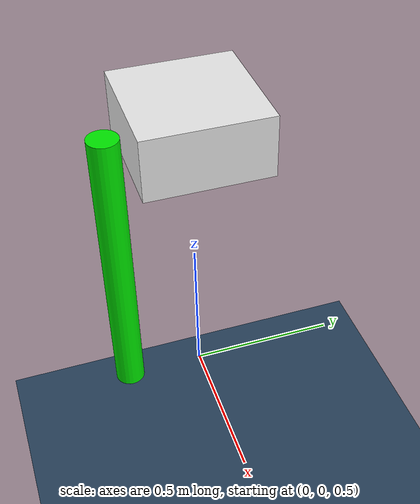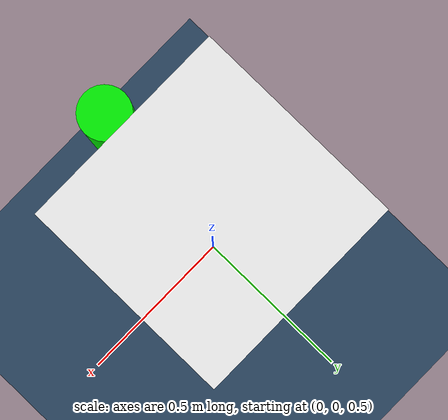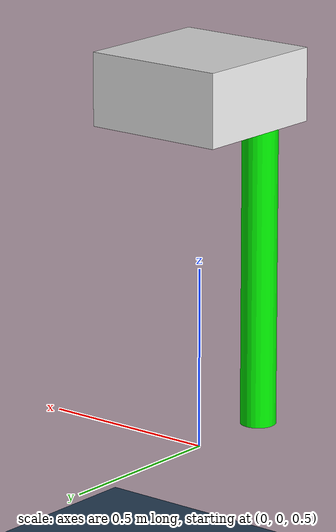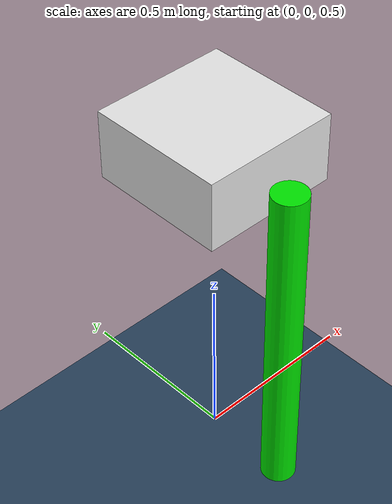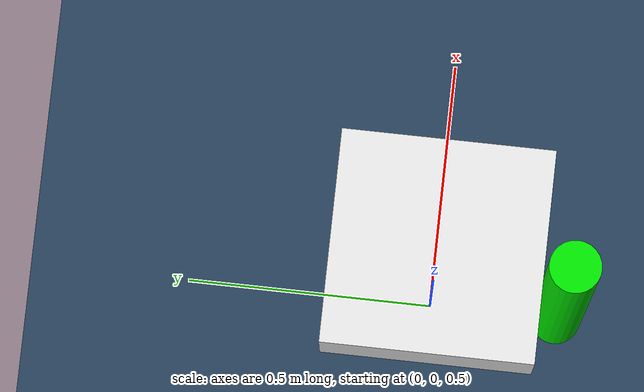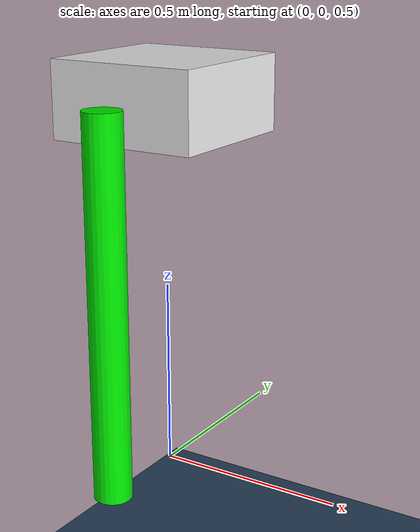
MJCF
<mujoco model="CartPole scene">

  <include file="mjCrtPl.xml"/>

  <statistic center="0.3 0 0.4" extent="1"/>

  <visual>
    <headlight diffuse="0.6 0.6 0.6" ambient="0.3 0.3 0.3" specular="0 0 0"/>
    <rgba haze="0.15 0.25 0.35 1"/>
    <global azimuth="120" elevation="-20"/>
  </visual>

  <asset>
    <texture type="skybox" builtin="gradient" rgb1="0.3 0.5 0.7" rgb2="0 0 0" width="512" height="3072"/>
    <texture type="2d" name="groundplane" builtin="checker" mark="edge" rgb1="0.2 0.3 0.4" rgb2="0.1 0.2 0.3"
      markrgb="0.8 0.8 0.8" width="300" height="300"/>
    <material name="groundplane" texture="groundplane" texuniform="true" texrepeat="5 5" reflectance="0.2"/>
  </asset>

  <worldbody>
    <light pos="0 0 1.5" dir="0 0 -1" directional="true"/>
    <geom name="floor" size="0 0 0.05" type="plane" material="groundplane"/>
  </worldbody>

</mujoco>

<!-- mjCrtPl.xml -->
<mujoco model="Cart on a Pole">
	<compiler angle="radian" autolimits="true"/>
	<option timestep="0.001" integrator="RK4">
	<flag sensornoise="enable" energy="enable"/>
	</option>
	<worldbody>
	<!-- First link -->
    	<body name="Base" pos="0 0 1.5" >
		    <inertial pos="0.1 0.1 0.05" mass="1" diaginertia="0.033 0.033 0.033"/>
    	    <joint type="slide" name="Slide" pos="0 0.1 0.05" axis="1 0 0" limited="true" range="-5 5"/>
    	    <geom size="0.2 0.2 0.1" type="box" rgba="0.9 0.9 0.9 1"/>
	<!-- Secind link (child) -->
    		<body name="link B" pos="0 -0.26 -0.5" >
			    <inertial pos="0 0 0.25" mass="0.1" diaginertia="0.002 0.002 0.002"/>
        	    <joint type="hinge" name="Hinge" pos="0 0 0.5" axis="0 1 0" />
        	    <geom size="0.05 0.5" type="cylinder" rgba="0 0.9 0 1"/>
      		</body>
    	</body>
  	</worldbody>
	<actuator>
		<motor joint="Slide" gear = "1" ctrlrange="-100 100"/>
	</actuator>
</mujoco>
